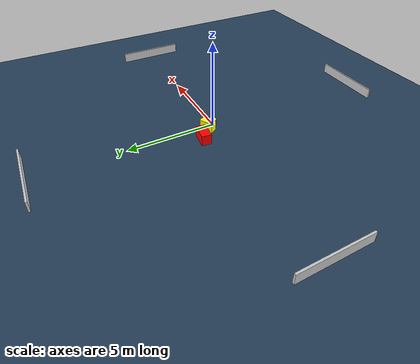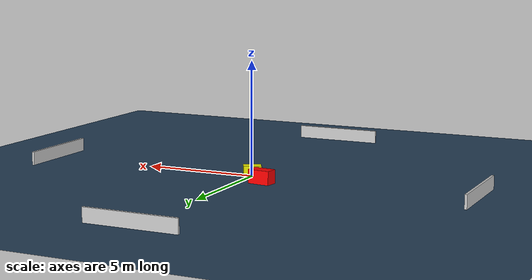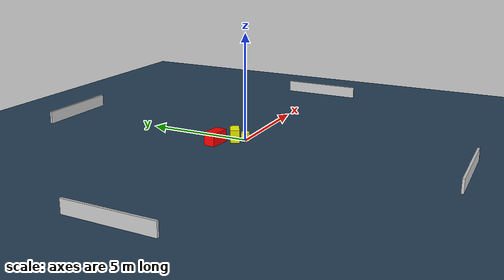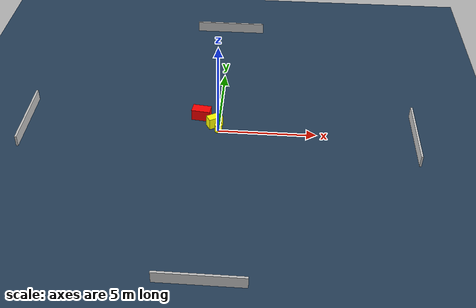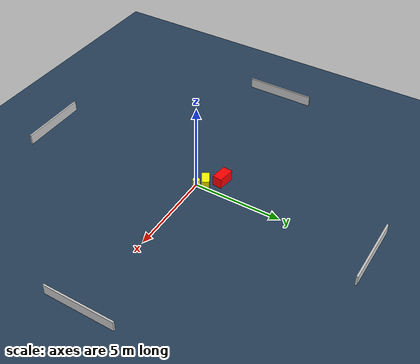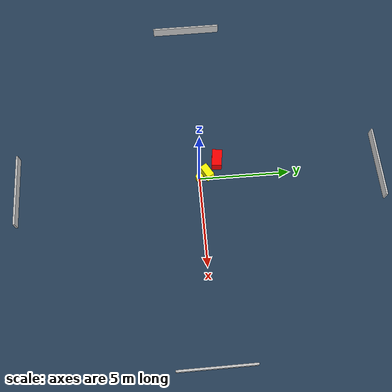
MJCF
<?xml version="1.0" ?>
<mujoco model="generated_environment">
  <option timestep="0.01" integrator="RK4" cone="elliptic"/>
  <default>
    <geom density="1"/>
  </default>
  <asset>
    <texture builtin="gradient" height="3072" name="skybox" rgb1="0.3 0.5 0.7" rgb2="0 0 0" type="skybox" width="512"/>
    <texture builtin="checker" height="300" name="groundplane" rgb1="0.2 0.3 0.4" rgb2="0.1 0.2 0.3" type="2d" width="300"/>
    <material name="groundplane" reflectance="0.2" texrepeat="5 5" texture="groundplane"/>
  </asset>
  <worldbody>
    <light dir="0 0 -1" directional="true" pos="0 0 1.5"/>
    <geom condim="3" friction="0.5 0.005 0.001" material="groundplane" name="floor" pos="0 0 0" size="0 0 0.05" type="plane"/>
    <body name="walls">
      <geom name="wall_1" condim="4" pos="-10.0 0.0 0.3" rgba="0.800000011920929 0.800000011920929 0.800000011920929 1.0" size="0.05 2.0 0.3" type="box"/>
      <geom name="wall_2" condim="4" pos="10.0 0.0 0.3" rgba="0.800000011920929 0.800000011920929 0.800000011920929 1.0" size="0.05 2.0 0.3" type="box"/>
      <geom name="wall_3" condim="4" pos="0.0 -10.0 0.3" rgba="0.800000011920929 0.800000011920929 0.800000011920929 1.0" size="2.0 0.05 0.3" type="box"/>
      <geom name="wall_4" condim="4" pos="0.0 10.0 0.3" rgba="0.800000011920929 0.800000011920929 0.800000011920929 1.0" size="2.0 0.05 0.3" type="box"/>
    </body>
    <body name="robot">
      <joint name="joint_x" type="slide" pos="0 0 0" axis="1 0 0"/>
      <joint name="joint_y" type="slide" pos="0 0 0" axis="0 1 0"/>
      <geom name="robot" type="cylinder" pos="0.0 0.0 0.2" size="0.2 0.2 0.0" mass="5.0" friction="1.0 0.005 0.0001" condim="4" rgba="1.0 1.0 0.0 1.0"/>
    </body>
    <body name="obstacle_1_movable">
      <geom name="obstacle_1_movable" condim="4" pos="-0.23462625966348194 0.43943335771618397 0.3" euler="0 0 299.9036829782479" friction="0.0 0.005 0.001" rgba="1.0 1.0 0.0 1.0" size="0.21281350680641958 0.3810901361138652 0.3" type="box" mass="0.1"/>
      <joint type="free"/>
    </body>
    <body name="obstacle_2_static">
      <geom name="obstacle_2_static" condim="4" pos="-0.969813672805075 1.059037950153794 0.3" euler="0 0 82.83564308368409" friction="0.0 0.005 0.001" rgba="1.0 0.0 0.0 1.0" size="0.27668049498459435 0.48498454017874815 0.3" type="box"/>
    </body>
  </worldbody>
  <actuator>
    <motor name="actuator_x" joint="joint_x" gear="1" ctrlrange="-1 1"/>
    <motor name="actuator_y" joint="joint_y" gear="1" ctrlrange="-1 1"/>
  </actuator>
</mujoco>
